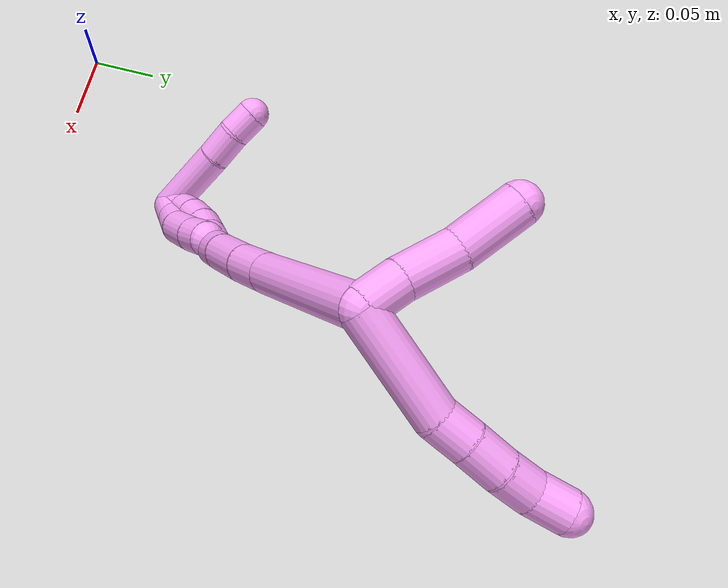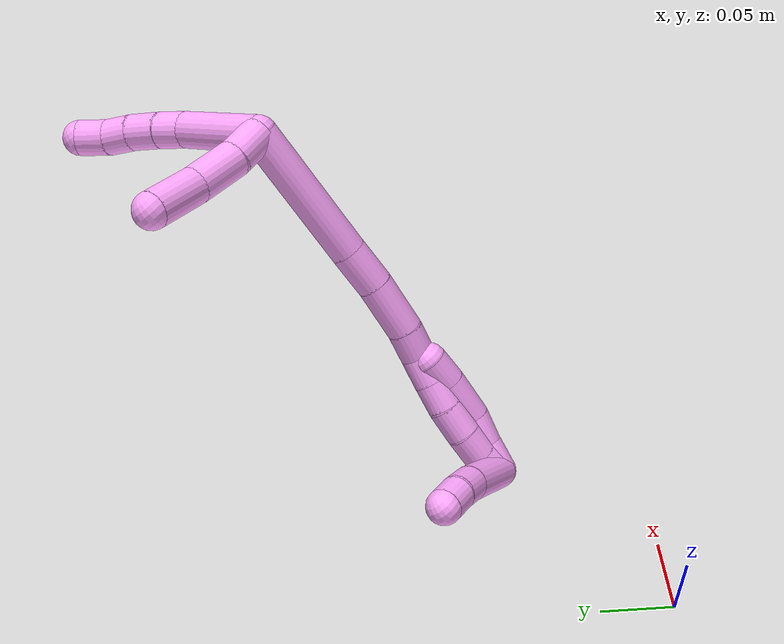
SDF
<sdf version="1.7">
 <world name="default">
  <model name="4">
   <static>0</static>
   <link name="4">
    <collision name="collision-cylinder-e_1_2_8">
     <pose>0.02944 -0.005629 0.014408 0.372468 1.08701 0.226708</pose>
     <geometry><cylinder><radius>0.0125</radius><length>0.066513</length></cylinder></geometry>
     <surface>
      <friction><ode><mu>1.16</mu><mu2>1.16</mu2><slip1>0</slip1><slip2>0</slip2></ode></friction>
      <contact><ode><kp>1e+06</kp><kd>1</kd><max_vel>0</max_vel><min_depth>0.001</min_depth></ode></contact>
     </surface>
    </collision>
    <visual name="visual-cylinder-e_1_2_8">
     <pose>0.02944 -0.005629 0.014408 0.372468 1.08701 0.226708</pose>
     <geometry><cylinder><radius>0.0125</radius><length>0.066513</length></cylinder></geometry>
     <material><ambient>1 0.65098 0.996078 1</ambient></material>
    </visual>
    <collision name="collision-cylinder-e_2_8_9">
     <pose>0.067449 -0.010197 0.033983 -0.202699 1.019 -0.113516</pose>
     <geometry><cylinder><radius>0.0125</radius><length>0.020125</length></cylinder></geometry>
     <surface>
      <friction><ode><mu>1.16</mu><mu2>1.16</mu2><slip1>0</slip1><slip2>0</slip2></ode></friction>
      <contact><ode><kp>1e+06</kp><kd>1</kd><max_vel>0</max_vel><min_depth>0.001</min_depth></ode></contact>
     </surface>
    </collision>
    <visual name="visual-cylinder-e_2_8_9">
     <pose>0.067449 -0.010197 0.033983 -0.202699 1.019 -0.113516</pose>
     <geometry><cylinder><radius>0.0125</radius><length>0.020125</length></cylinder></geometry>
     <material><ambient>1 0.65098 0.996078 1</ambient></material>
    </visual>
    <collision name="collision-cylinder-e_3_9_10">
     <pose>0.085861 -0.008152 0.044268 -0.189785 1.08389 -0.114484</pose>
     <geometry><cylinder><radius>0.0125</radius><length>0.022275</length></cylinder></geometry>
     <surface>
      <friction><ode><mu>1.16</mu><mu2>1.16</mu2><slip1>0</slip1><slip2>0</slip2></ode></friction>
      <contact><ode><kp>1e+06</kp><kd>1</kd><max_vel>0</max_vel><min_depth>0.001</min_depth></ode></contact>
     </surface>
    </collision>
    <visual name="visual-cylinder-e_3_9_10">
     <pose>0.085861 -0.008152 0.044268 -0.189785 1.08389 -0.114484</pose>
     <geometry><cylinder><radius>0.0125</radius><length>0.022275</length></cylinder></geometry>
     <material><ambient>1 0.65098 0.996078 1</ambient></material>
    </visual>
    <collision name="collision-cylinder-e_4_10_11">
     <pose>0.104839 -0.00552 0.053252 -0.403017 1.13949 -0.26025</pose>
     <geometry><cylinder><radius>0.0125</radius><length>0.02011</length></cylinder></geometry>
     <surface>
      <friction><ode><mu>1.16</mu><mu2>1.16</mu2><slip1>0</slip1><slip2>0</slip2></ode></friction>
      <contact><ode><kp>1e+06</kp><kd>1</kd><max_vel>0</max_vel><min_depth>0.001</min_depth></ode></contact>
     </surface>
    </collision>
    <visual name="visual-cylinder-e_4_10_11">
     <pose>0.104839 -0.00552 0.053252 -0.403017 1.13949 -0.26025</pose>
     <geometry><cylinder><radius>0.0125</radius><length>0.02011</length></cylinder></geometry>
     <material><ambient>1 0.65098 0.996078 1</ambient></material>
    </visual>
    <collision name="collision-cylinder-e_5_11_6">
     <pose>0.122047 -0.001099 0.063212 -0.427068 0.878584 -0.203092</pose>
     <geometry><cylinder><radius>0.0125</radius><length>0.020977</length></cylinder></geometry>
     <surface>
      <friction><ode><mu>1.16</mu><mu2>1.16</mu2><slip1>0</slip1><slip2>0</slip2></ode></friction>
      <contact><ode><kp>1e+06</kp><kd>1</kd><max_vel>0</max_vel><min_depth>0.001</min_depth></ode></contact>
     </surface>
    </collision>
    <visual name="visual-cylinder-e_5_11_6">
     <pose>0.122047 -0.001099 0.063212 -0.427068 0.878584 -0.203092</pose>
     <geometry><cylinder><radius>0.0125</radius><length>0.020977</length></cylinder></geometry>
     <material><ambient>1 0.65098 0.996078 1</ambient></material>
    </visual>
    <collision name="collision-cylinder-e_1_2_12">
     <pose>0.003334 0.012409 -0.000139 -1.58202 0.262436 -0.265363</pose>
     <geometry><cylinder><radius>0.0125</radius><length>0.025699</length></cylinder></geometry>
     <surface>
      <friction><ode><mu>1.16</mu><mu2>1.16</mu2><slip1>0</slip1><slip2>0</slip2></ode></friction>
      <contact><ode><kp>1e+06</kp><kd>1</kd><max_vel>0</max_vel><min_depth>0.001</min_depth></ode></contact>
     </surface>
    </collision>
    <visual name="visual-cylinder-e_1_2_12">
     <pose>0.003334 0.012409 -0.000139 -1.58202 0.262436 -0.265363</pose>
     <geometry><cylinder><radius>0.0125</radius><length>0.025699</length></cylinder></geometry>
     <material><ambient>1 0.65098 0.996078 1</ambient></material>
    </visual>
    <collision name="collision-cylinder-e_2_12_13">
     <pose>0.011629 0.041277 0.002209 -1.42079 0.289705 -0.249661</pose>
     <geometry><cylinder><radius>0.0125</radius><length>0.034741</length></cylinder></geometry>
     <surface>
      <friction><ode><mu>1.16</mu><mu2>1.16</mu2><slip1>0</slip1><slip2>0</slip2></ode></friction>
      <contact><ode><kp>1e+06</kp><kd>1</kd><max_vel>0</max_vel><min_depth>0.001</min_depth></ode></contact>
     </surface>
    </collision>
    <visual name="visual-cylinder-e_2_12_13">
     <pose>0.011629 0.041277 0.002209 -1.42079 0.289705 -0.249661</pose>
     <geometry><cylinder><radius>0.0125</radius><length>0.034741</length></cylinder></geometry>
     <material><ambient>1 0.65098 0.996078 1</ambient></material>
    </visual>
    <collision name="collision-cylinder-e_3_13_5">
     <pose>0.017832 0.077044 0.008815 -1.36068 0.062733 -0.050771</pose>
     <geometry><cylinder><radius>0.0125</radius><length>0.039561</length></cylinder></geometry>
     <surface>
      <friction><ode><mu>1.16</mu><mu2>1.16</mu2><slip1>0</slip1><slip2>0</slip2></ode></friction>
      <contact><ode><kp>1e+06</kp><kd>1</kd><max_vel>0</max_vel><min_depth>0.001</min_depth></ode></contact>
     </surface>
    </collision>
    <visual name="visual-cylinder-e_3_13_5">
     <pose>0.017832 0.077044 0.008815 -1.36068 0.062733 -0.050771</pose>
     <geometry><cylinder><radius>0.0125</radius><length>0.039561</length></cylinder></geometry>
     <material><ambient>1 0.65098 0.996078 1</ambient></material>
    </visual>
    <collision name="collision-cylinder-e_1_2_14">
     <pose>0.006389 -0.003341 -0.049849 3.07467 0.127194 2.17366</pose>
     <geometry><cylinder><radius>0.0125</radius><length>0.100736</length></cylinder></geometry>
     <surface>
      <friction><ode><mu>1.16</mu><mu2>1.16</mu2><slip1>0</slip1><slip2>0</slip2></ode></friction>
      <contact><ode><kp>1e+06</kp><kd>1</kd><max_vel>0</max_vel><min_depth>0.001</min_depth></ode></contact>
     </surface>
    </collision>
    <visual name="visual-cylinder-e_1_2_14">
     <pose>0.006389 -0.003341 -0.049849 3.07467 0.127194 2.17366</pose>
     <geometry><cylinder><radius>0.0125</radius><length>0.100736</length></cylinder></geometry>
     <material><ambient>1 0.65098 0.996078 1</ambient></material>
    </visual>
    <collision name="collision-cylinder-e_2_14_15">
     <pose>0.014273 -0.007601 -0.115098 3.08202 0.096596 2.03683</pose>
     <geometry><cylinder><radius>0.0125</radius><length>0.030998</length></cylinder></geometry>
     <surface>
      <friction><ode><mu>1.16</mu><mu2>1.16</mu2><slip1>0</slip1><slip2>0</slip2></ode></friction>
      <contact><ode><kp>1e+06</kp><kd>1</kd><max_vel>0</max_vel><min_depth>0.001</min_depth></ode></contact>
     </surface>
    </collision>
    <visual name="visual-cylinder-e_2_14_15">
     <pose>0.014273 -0.007601 -0.115098 3.08202 0.096596 2.03683</pose>
     <geometry><cylinder><radius>0.0125</radius><length>0.030998</length></cylinder></geometry>
     <material><ambient>1 0.65098 0.996078 1</ambient></material>
    </visual>
    <collision name="collision-cylinder-e_3_15_16">
     <pose>0.018614 -0.008529 -0.150056 3.1411 0.144466 3.13484</pose>
     <geometry><cylinder><radius>0.0125</radius><length>0.039529</length></cylinder></geometry>
     <surface>
      <friction><ode><mu>1.16</mu><mu2>1.16</mu2><slip1>0</slip1><slip2>0</slip2></ode></friction>
      <contact><ode><kp>1e+06</kp><kd>1</kd><max_vel>0</max_vel><min_depth>0.001</min_depth></ode></contact>
     </surface>
    </collision>
    <visual name="visual-cylinder-e_3_15_16">
     <pose>0.018614 -0.008529 -0.150056 3.1411 0.144466 3.13484</pose>
     <geometry><cylinder><radius>0.0125</radius><length>0.039529</length></cylinder></geometry>
     <material><ambient>1 0.65098 0.996078 1</ambient></material>
    </visual>
    <collision name="collision-cylinder-e_4_16_17">
     <pose>0.024143 -0.007976 -0.180418 -3.08959 0.243248 -2.72228</pose>
     <geometry><cylinder><radius>0.0125</radius><length>0.022292</length></cylinder></geometry>
     <surface>
      <friction><ode><mu>1.16</mu><mu2>1.16</mu2><slip1>0</slip1><slip2>0</slip2></ode></friction>
      <contact><ode><kp>1e+06</kp><kd>1</kd><max_vel>0</max_vel><min_depth>0.001</min_depth></ode></contact>
     </surface>
    </collision>
    <visual name="visual-cylinder-e_4_16_17">
     <pose>0.024143 -0.007976 -0.180418 -3.08959 0.243248 -2.72228</pose>
     <geometry><cylinder><radius>0.0125</radius><length>0.022292</length></cylinder></geometry>
     <material><ambient>1 0.65098 0.996078 1</ambient></material>
    </visual>
    <collision name="collision-cylinder-e_5_17_18">
     <pose>0.027657 -0.004728 -0.201704 -2.89077 0.076461 -0.589121</pose>
     <geometry><cylinder><radius>0.0125</radius><length>0.021706</length></cylinder></geometry>
     <surface>
      <friction><ode><mu>1.16</mu><mu2>1.16</mu2><slip1>0</slip1><slip2>0</slip2></ode></friction>
      <contact><ode><kp>1e+06</kp><kd>1</kd><max_vel>0</max_vel><min_depth>0.001</min_depth></ode></contact>
     </surface>
    </collision>
    <visual name="visual-cylinder-e_5_17_18">
     <pose>0.027657 -0.004728 -0.201704 -2.89077 0.076461 -0.589121</pose>
     <geometry><cylinder><radius>0.0125</radius><length>0.021706</length></cylinder></geometry>
     <material><ambient>1 0.65098 0.996078 1</ambient></material>
    </visual>
    <collision name="collision-cylinder-e_6_18_19">
     <pose>0.028981 0.000478 -0.222136 -2.89359 0.048222 -0.382243</pose>
     <geometry><cylinder><radius>0.0125</radius><length>0.020552</length></cylinder></geometry>
     <surface>
      <friction><ode><mu>1.16</mu><mu2>1.16</mu2><slip1>0</slip1><slip2>0</slip2></ode></friction>
      <contact><ode><kp>1e+06</kp><kd>1</kd><max_vel>0</max_vel><min_depth>0.001</min_depth></ode></contact>
     </surface>
    </collision>
    <visual name="visual-cylinder-e_6_18_19">
     <pose>0.028981 0.000478 -0.222136 -2.89359 0.048222 -0.382243</pose>
     <geometry><cylinder><radius>0.0125</radius><length>0.020552</length></cylinder></geometry>
     <material><ambient>1 0.65098 0.996078 1</ambient></material>
    </visual>
    <collision name="collision-cylinder-e_7_19_20">
     <pose>0.029834 0.004314 -0.243788 -3.02954 0.030354 -0.528579</pose>
     <geometry><cylinder><radius>0.0125</radius><length>0.023562</length></cylinder></geometry>
     <surface>
      <friction><ode><mu>1.16</mu><mu2>1.16</mu2><slip1>0</slip1><slip2>0</slip2></ode></friction>
      <contact><ode><kp>1e+06</kp><kd>1</kd><max_vel>0</max_vel><min_depth>0.001</min_depth></ode></contact>
     </surface>
    </collision>
    <visual name="visual-cylinder-e_7_19_20">
     <pose>0.029834 0.004314 -0.243788 -3.02954 0.030354 -0.528579</pose>
     <geometry><cylinder><radius>0.0125</radius><length>0.023562</length></cylinder></geometry>
     <material><ambient>1 0.65098 0.996078 1</ambient></material>
    </visual>
    <collision name="collision-cylinder-e_8_20_21">
     <pose>0.030786 0.005764 -0.2657 -3.12847 0.058076 -2.69734</pose>
     <geometry><cylinder><radius>0.0125</radius><length>0.020457</length></cylinder></geometry>
     <surface>
      <friction><ode><mu>1.16</mu><mu2>1.16</mu2><slip1>0</slip1><slip2>0</slip2></ode></friction>
      <contact><ode><kp>1e+06</kp><kd>1</kd><max_vel>0</max_vel><min_depth>0.001</min_depth></ode></contact>
     </surface>
    </collision>
    <visual name="visual-cylinder-e_8_20_21">
     <pose>0.030786 0.005764 -0.2657 -3.12847 0.058076 -2.69734</pose>
     <geometry><cylinder><radius>0.0125</radius><length>0.020457</length></cylinder></geometry>
     <material><ambient>1 0.65098 0.996078 1</ambient></material>
    </visual>
    <collision name="collision-cylinder-e_9_21_1">
     <pose>0.030812 0.004342 -0.285858 2.9864 -0.056315 -0.695077</pose>
     <geometry><cylinder><radius>0.0125</radius><length>0.020168</length></cylinder></geometry>
     <surface>
      <friction><ode><mu>1.16</mu><mu2>1.16</mu2><slip1>0</slip1><slip2>0</slip2></ode></friction>
      <contact><ode><kp>1e+06</kp><kd>1</kd><max_vel>0</max_vel><min_depth>0.001</min_depth></ode></contact>
     </surface>
    </collision>
    <visual name="visual-cylinder-e_9_21_1">
     <pose>0.030812 0.004342 -0.285858 2.9864 -0.056315 -0.695077</pose>
     <geometry><cylinder><radius>0.0125</radius><length>0.020168</length></cylinder></geometry>
     <material><ambient>1 0.65098 0.996078 1</ambient></material>
    </visual>
    <collision name="collision-cylinder-e_1_1_22">
     <pose>0.03031 -0.0004 -0.285369 0.296359 0.006024 0.000899</pose>
     <geometry><cylinder><radius>0.0125</radius><length>0.021823</length></cylinder></geometry>
     <surface>
      <friction><ode><mu>1.16</mu><mu2>1.16</mu2><slip1>0</slip1><slip2>0</slip2></ode></friction>
      <contact><ode><kp>1e+06</kp><kd>1</kd><max_vel>0</max_vel><min_depth>0.001</min_depth></ode></contact>
     </surface>
    </collision>
    <visual name="visual-cylinder-e_1_1_22">
     <pose>0.03031 -0.0004 -0.285369 0.296359 0.006024 0.000899</pose>
     <geometry><cylinder><radius>0.0125</radius><length>0.021823</length></cylinder></geometry>
     <material><ambient>1 0.65098 0.996078 1</ambient></material>
    </visual>
    <collision name="collision-cylinder-e_2_22_23">
     <pose>0.028818 -0.006319 -0.263889 0.242536 -0.136053 -0.016606</pose>
     <geometry><cylinder><radius>0.0125</radius><length>0.022967</length></cylinder></geometry>
     <surface>
      <friction><ode><mu>1.16</mu><mu2>1.16</mu2><slip1>0</slip1><slip2>0</slip2></ode></friction>
      <contact><ode><kp>1e+06</kp><kd>1</kd><max_vel>0</max_vel><min_depth>0.001</min_depth></ode></contact>
     </surface>
    </collision>
    <visual name="visual-cylinder-e_2_22_23">
     <pose>0.028818 -0.006319 -0.263889 0.242536 -0.136053 -0.016606</pose>
     <geometry><cylinder><radius>0.0125</radius><length>0.022967</length></cylinder></geometry>
     <material><ambient>1 0.65098 0.996078 1</ambient></material>
    </visual>
    <collision name="collision-cylinder-e_3_23_24">
     <pose>0.025293 -0.008924 -0.236447 -0.007796 -0.11939 0.000466</pose>
     <geometry><cylinder><radius>0.0125</radius><length>0.033031</length></cylinder></geometry>
     <surface>
      <friction><ode><mu>1.16</mu><mu2>1.16</mu2><slip1>0</slip1><slip2>0</slip2></ode></friction>
      <contact><ode><kp>1e+06</kp><kd>1</kd><max_vel>0</max_vel><min_depth>0.001</min_depth></ode></contact>
     </surface>
    </collision>
    <visual name="visual-cylinder-e_3_23_24">
     <pose>0.025293 -0.008924 -0.236447 -0.007796 -0.11939 0.000466</pose>
     <geometry><cylinder><radius>0.0125</radius><length>0.033031</length></cylinder></geometry>
     <material><ambient>1 0.65098 0.996078 1</ambient></material>
    </visual>
    <collision name="collision-cylinder-e_4_24_4">
     <pose>0.022236 -0.007835 -0.209056 -0.087181 -0.098487 0.004299</pose>
     <geometry><cylinder><radius>0.0125</radius><length>0.022179</length></cylinder></geometry>
     <surface>
      <friction><ode><mu>1.16</mu><mu2>1.16</mu2><slip1>0</slip1><slip2>0</slip2></ode></friction>
      <contact><ode><kp>1e+06</kp><kd>1</kd><max_vel>0</max_vel><min_depth>0.001</min_depth></ode></contact>
     </surface>
    </collision>
    <visual name="visual-cylinder-e_4_24_4">
     <pose>0.022236 -0.007835 -0.209056 -0.087181 -0.098487 0.004299</pose>
     <geometry><cylinder><radius>0.0125</radius><length>0.022179</length></cylinder></geometry>
     <material><ambient>1 0.65098 0.996078 1</ambient></material>
    </visual>
    <collision name="collision-cylinder-e_1_1_25">
     <pose>0.022333 0.026106 -0.282782 -1.06151 -0.287942 0.169771</pose>
     <geometry><cylinder><radius>0.0125</radius><length>0.055713</length></cylinder></geometry>
     <surface>
      <friction><ode><mu>1.16</mu><mu2>1.16</mu2><slip1>0</slip1><slip2>0</slip2></ode></friction>
      <contact><ode><kp>1e+06</kp><kd>1</kd><max_vel>0</max_vel><min_depth>0.001</min_depth></ode></contact>
     </surface>
    </collision>
    <visual name="visual-cylinder-e_1_1_25">
     <pose>0.022333 0.026106 -0.282782 -1.06151 -0.287942 0.169771</pose>
     <geometry><cylinder><radius>0.0125</radius><length>0.055713</length></cylinder></geometry>
     <material><ambient>1 0.65098 0.996078 1</ambient></material>
    </visual>
    <collision name="collision-cylinder-e_2_25_26">
     <pose>0.011033 0.060098 -0.265239 -1.17003 -0.284549 0.189189</pose>
     <geometry><cylinder><radius>0.0125</radius><length>0.024151</length></cylinder></geometry>
     <surface>
      <friction><ode><mu>1.16</mu><mu2>1.16</mu2><slip1>0</slip1><slip2>0</slip2></ode></friction>
      <contact><ode><kp>1e+06</kp><kd>1</kd><max_vel>0</max_vel><min_depth>0.001</min_depth></ode></contact>
     </surface>
    </collision>
    <visual name="visual-cylinder-e_2_25_26">
     <pose>0.011033 0.060098 -0.265239 -1.17003 -0.284549 0.189189</pose>
     <geometry><cylinder><radius>0.0125</radius><length>0.024151</length></cylinder></geometry>
     <material><ambient>1 0.65098 0.996078 1</ambient></material>
    </visual>
    <collision name="collision-cylinder-e_3_26_3">
     <pose>0.006257 0.080379 -0.258054 -1.30052 -0.138122 0.105128</pose>
     <geometry><cylinder><radius>0.0125</radius><length>0.020136</length></cylinder></geometry>
     <surface>
      <friction><ode><mu>1.16</mu><mu2>1.16</mu2><slip1>0</slip1><slip2>0</slip2></ode></friction>
      <contact><ode><kp>1e+06</kp><kd>1</kd><max_vel>0</max_vel><min_depth>0.001</min_depth></ode></contact>
     </surface>
    </collision>
    <visual name="visual-cylinder-e_3_26_3">
     <pose>0.006257 0.080379 -0.258054 -1.30052 -0.138122 0.105128</pose>
     <geometry><cylinder><radius>0.0125</radius><length>0.020136</length></cylinder></geometry>
     <material><ambient>1 0.65098 0.996078 1</ambient></material>
    </visual>
    <collision name="collision-sphere-3">
     <pose>0.004871 0.089989 -0.255392 0 -0 0</pose>
     <geometry><sphere><radius>0.0125</radius></sphere></geometry>
     <surface>
      <friction><ode><mu>1.16</mu><mu2>1.16</mu2><slip1>0</slip1><slip2>0</slip2></ode></friction>
      <contact><ode><kp>1e+06</kp><kd>1</kd><max_vel>0</max_vel><min_depth>0.001</min_depth></ode></contact>
     </surface>
    </collision>
    <visual name="visual-sphere-3">
     <pose>0.004871 0.089989 -0.255392 0 -0 0</pose>
     <geometry><sphere><radius>0.0125</radius></sphere></geometry>
     <material><ambient>1 0.65098 0.996078 1</ambient></material>
    </visual>
    <collision name="collision-sphere-26">
     <pose>0.007643 0.070769 -0.260717 0 -0 0</pose>
     <geometry><sphere><radius>0.0125</radius></sphere></geometry>
     <surface>
      <friction><ode><mu>1.16</mu><mu2>1.16</mu2><slip1>0</slip1><slip2>0</slip2></ode></friction>
      <contact><ode><kp>1e+06</kp><kd>1</kd><max_vel>0</max_vel><min_depth>0.001</min_depth></ode></contact>
     </surface>
    </collision>
    <visual name="visual-sphere-26">
     <pose>0.007643 0.070769 -0.260717 0 -0 0</pose>
     <geometry><sphere><radius>0.0125</radius></sphere></geometry>
     <material><ambient>1 0.65098 0.996078 1</ambient></material>
    </visual>
    <collision name="collision-sphere-25">
     <pose>0.014423 0.049426 -0.26976 0 -0 0</pose>
     <geometry><sphere><radius>0.0125</radius></sphere></geometry>
     <surface>
      <friction><ode><mu>1.16</mu><mu2>1.16</mu2><slip1>0</slip1><slip2>0</slip2></ode></friction>
      <contact><ode><kp>1e+06</kp><kd>1</kd><max_vel>0</max_vel><min_depth>0.001</min_depth></ode></contact>
     </surface>
    </collision>
    <visual name="visual-sphere-25">
     <pose>0.014423 0.049426 -0.26976 0 -0 0</pose>
     <geometry><sphere><radius>0.0125</radius></sphere></geometry>
     <material><ambient>1 0.65098 0.996078 1</ambient></material>
    </visual>
    <collision name="collision-sphere-4">
     <pose>0.021145 -0.006874 -0.198062 0 -0 0</pose>
     <geometry><sphere><radius>0.0125</radius></sphere></geometry>
     <surface>
      <friction><ode><mu>1.16</mu><mu2>1.16</mu2><slip1>0</slip1><slip2>0</slip2></ode></friction>
      <contact><ode><kp>1e+06</kp><kd>1</kd><max_vel>0</max_vel><min_depth>0.001</min_depth></ode></contact>
     </surface>
    </collision>
    <visual name="visual-sphere-4">
     <pose>0.021145 -0.006874 -0.198062 0 -0 0</pose>
     <geometry><sphere><radius>0.0125</radius></sphere></geometry>
     <material><ambient>1 0.65098 0.996078 1</ambient></material>
    </visual>
    <collision name="collision-sphere-24">
     <pose>0.023326 -0.008796 -0.22005 0 -0 0</pose>
     <geometry><sphere><radius>0.0125</radius></sphere></geometry>
     <surface>
      <friction><ode><mu>1.16</mu><mu2>1.16</mu2><slip1>0</slip1><slip2>0</slip2></ode></friction>
      <contact><ode><kp>1e+06</kp><kd>1</kd><max_vel>0</max_vel><min_depth>0.001</min_depth></ode></contact>
     </surface>
    </collision>
    <visual name="visual-sphere-24">
     <pose>0.023326 -0.008796 -0.22005 0 -0 0</pose>
     <geometry><sphere><radius>0.0125</radius></sphere></geometry>
     <material><ambient>1 0.65098 0.996078 1</ambient></material>
    </visual>
    <collision name="collision-sphere-23">
     <pose>0.02726 -0.009052 -0.252845 0 -0 0</pose>
     <geometry><sphere><radius>0.0125</radius></sphere></geometry>
     <surface>
      <friction><ode><mu>1.16</mu><mu2>1.16</mu2><slip1>0</slip1><slip2>0</slip2></ode></friction>
      <contact><ode><kp>1e+06</kp><kd>1</kd><max_vel>0</max_vel><min_depth>0.001</min_depth></ode></contact>
     </surface>
    </collision>
    <visual name="visual-sphere-23">
     <pose>0.02726 -0.009052 -0.252845 0 -0 0</pose>
     <geometry><sphere><radius>0.0125</radius></sphere></geometry>
     <material><ambient>1 0.65098 0.996078 1</ambient></material>
    </visual>
    <collision name="collision-sphere-22">
     <pose>0.030376 -0.003587 -0.274934 0 -0 0</pose>
     <geometry><sphere><radius>0.0125</radius></sphere></geometry>
     <surface>
      <friction><ode><mu>1.16</mu><mu2>1.16</mu2><slip1>0</slip1><slip2>0</slip2></ode></friction>
      <contact><ode><kp>1e+06</kp><kd>1</kd><max_vel>0</max_vel><min_depth>0.001</min_depth></ode></contact>
     </surface>
    </collision>
    <visual name="visual-sphere-22">
     <pose>0.030376 -0.003587 -0.274934 0 -0 0</pose>
     <geometry><sphere><radius>0.0125</radius></sphere></geometry>
     <material><ambient>1 0.65098 0.996078 1</ambient></material>
    </visual>
    <collision name="collision-sphere-1">
     <pose>0.030244 0.002786 -0.295805 0 -0 0</pose>
     <geometry><sphere><radius>0.0125</radius></sphere></geometry>
     <surface>
      <friction><ode><mu>1.16</mu><mu2>1.16</mu2><slip1>0</slip1><slip2>0</slip2></ode></friction>
      <contact><ode><kp>1e+06</kp><kd>1</kd><max_vel>0</max_vel><min_depth>0.001</min_depth></ode></contact>
     </surface>
    </collision>
    <visual name="visual-sphere-1">
     <pose>0.030244 0.002786 -0.295805 0 -0 0</pose>
     <geometry><sphere><radius>0.0125</radius></sphere></geometry>
     <material><ambient>1 0.65098 0.996078 1</ambient></material>
    </visual>
    <collision name="collision-sphere-21">
     <pose>0.031379 0.005898 -0.275911 0 -0 0</pose>
     <geometry><sphere><radius>0.0125</radius></sphere></geometry>
     <surface>
      <friction><ode><mu>1.16</mu><mu2>1.16</mu2><slip1>0</slip1><slip2>0</slip2></ode></friction>
      <contact><ode><kp>1e+06</kp><kd>1</kd><max_vel>0</max_vel><min_depth>0.001</min_depth></ode></contact>
     </surface>
    </collision>
    <visual name="visual-sphere-21">
     <pose>0.031379 0.005898 -0.275911 0 -0 0</pose>
     <geometry><sphere><radius>0.0125</radius></sphere></geometry>
     <material><ambient>1 0.65098 0.996078 1</ambient></material>
    </visual>
    <collision name="collision-sphere-6">
     <pose>0.130122 0.001674 0.069305 0 -0 0</pose>
     <geometry><sphere><radius>0.0125</radius></sphere></geometry>
     <surface>
      <friction><ode><mu>1.16</mu><mu2>1.16</mu2><slip1>0</slip1><slip2>0</slip2></ode></friction>
      <contact><ode><kp>1e+06</kp><kd>1</kd><max_vel>0</max_vel><min_depth>0.001</min_depth></ode></contact>
     </surface>
    </collision>
    <visual name="visual-sphere-6">
     <pose>0.130122 0.001674 0.069305 0 -0 0</pose>
     <geometry><sphere><radius>0.0125</radius></sphere></geometry>
     <material><ambient>1 0.65098 0.996078 1</ambient></material>
    </visual>
    <collision name="collision-sphere-11">
     <pose>0.113973 -0.003871 0.057119 0 -0 0</pose>
     <geometry><sphere><radius>0.0125</radius></sphere></geometry>
     <surface>
      <friction><ode><mu>1.16</mu><mu2>1.16</mu2><slip1>0</slip1><slip2>0</slip2></ode></friction>
      <contact><ode><kp>1e+06</kp><kd>1</kd><max_vel>0</max_vel><min_depth>0.001</min_depth></ode></contact>
     </surface>
    </collision>
    <visual name="visual-sphere-11">
     <pose>0.113973 -0.003871 0.057119 0 -0 0</pose>
     <geometry><sphere><radius>0.0125</radius></sphere></geometry>
     <material><ambient>1 0.65098 0.996078 1</ambient></material>
    </visual>
    <collision name="collision-sphere-10">
     <pose>0.095704 -0.007169 0.049385 0 -0 0</pose>
     <geometry><sphere><radius>0.0125</radius></sphere></geometry>
     <surface>
      <friction><ode><mu>1.16</mu><mu2>1.16</mu2><slip1>0</slip1><slip2>0</slip2></ode></friction>
      <contact><ode><kp>1e+06</kp><kd>1</kd><max_vel>0</max_vel><min_depth>0.001</min_depth></ode></contact>
     </surface>
    </collision>
    <visual name="visual-sphere-10">
     <pose>0.095704 -0.007169 0.049385 0 -0 0</pose>
     <geometry><sphere><radius>0.0125</radius></sphere></geometry>
     <material><ambient>1 0.65098 0.996078 1</ambient></material>
    </visual>
    <collision name="collision-sphere-9">
     <pose>0.076018 -0.009135 0.03915 0 -0 0</pose>
     <geometry><sphere><radius>0.0125</radius></sphere></geometry>
     <surface>
      <friction><ode><mu>1.16</mu><mu2>1.16</mu2><slip1>0</slip1><slip2>0</slip2></ode></friction>
      <contact><ode><kp>1e+06</kp><kd>1</kd><max_vel>0</max_vel><min_depth>0.001</min_depth></ode></contact>
     </surface>
    </collision>
    <visual name="visual-sphere-9">
     <pose>0.076018 -0.009135 0.03915 0 -0 0</pose>
     <geometry><sphere><radius>0.0125</radius></sphere></geometry>
     <material><ambient>1 0.65098 0.996078 1</ambient></material>
    </visual>
    <collision name="collision-sphere-2">
     <geometry><sphere><radius>0.0125</radius></sphere></geometry>
     <surface>
      <friction><ode><mu>1.16</mu><mu2>1.16</mu2><slip1>0</slip1><slip2>0</slip2></ode></friction>
      <contact><ode><kp>1e+06</kp><kd>1</kd><max_vel>0</max_vel><min_depth>0.001</min_depth></ode></contact>
     </surface>
    </collision>
    <visual name="visual-sphere-2">
     <geometry><sphere><radius>0.0125</radius></sphere></geometry>
     <material><ambient>1 0.65098 0.996078 1</ambient></material>
    </visual>
    <collision name="collision-sphere-19">
     <pose>0.029477 0.002997 -0.232086 0 -0 0</pose>
     <geometry><sphere><radius>0.0125</radius></sphere></geometry>
     <surface>
      <friction><ode><mu>1.16</mu><mu2>1.16</mu2><slip1>0</slip1><slip2>0</slip2></ode></friction>
      <contact><ode><kp>1e+06</kp><kd>1</kd><max_vel>0</max_vel><min_depth>0.001</min_depth></ode></contact>
     </surface>
    </collision>
    <visual name="visual-sphere-19">
     <pose>0.029477 0.002997 -0.232086 0 -0 0</pose>
     <geometry><sphere><radius>0.0125</radius></sphere></geometry>
     <material><ambient>1 0.65098 0.996078 1</ambient></material>
    </visual>
    <collision name="collision-sphere-8">
     <pose>0.05888 -0.011259 0.028816 0 -0 0</pose>
     <geometry><sphere><radius>0.0125</radius></sphere></geometry>
     <surface>
      <friction><ode><mu>1.16</mu><mu2>1.16</mu2><slip1>0</slip1><slip2>0</slip2></ode></friction>
      <contact><ode><kp>1e+06</kp><kd>1</kd><max_vel>0</max_vel><min_depth>0.001</min_depth></ode></contact>
     </surface>
    </collision>
    <visual name="visual-sphere-8">
     <pose>0.05888 -0.011259 0.028816 0 -0 0</pose>
     <geometry><sphere><radius>0.0125</radius></sphere></geometry>
     <material><ambient>1 0.65098 0.996078 1</ambient></material>
    </visual>
    <collision name="collision-sphere-12">
     <pose>0.006667 0.024817 -0.000279 0 -0 0</pose>
     <geometry><sphere><radius>0.0125</radius></sphere></geometry>
     <surface>
      <friction><ode><mu>1.16</mu><mu2>1.16</mu2><slip1>0</slip1><slip2>0</slip2></ode></friction>
      <contact><ode><kp>1e+06</kp><kd>1</kd><max_vel>0</max_vel><min_depth>0.001</min_depth></ode></contact>
     </surface>
    </collision>
    <visual name="visual-sphere-12">
     <pose>0.006667 0.024817 -0.000279 0 -0 0</pose>
     <geometry><sphere><radius>0.0125</radius></sphere></geometry>
     <material><ambient>1 0.65098 0.996078 1</ambient></material>
    </visual>
    <collision name="collision-sphere-13">
     <pose>0.016591 0.057736 0.004697 0 -0 0</pose>
     <geometry><sphere><radius>0.0125</radius></sphere></geometry>
     <surface>
      <friction><ode><mu>1.16</mu><mu2>1.16</mu2><slip1>0</slip1><slip2>0</slip2></ode></friction>
      <contact><ode><kp>1e+06</kp><kd>1</kd><max_vel>0</max_vel><min_depth>0.001</min_depth></ode></contact>
     </surface>
    </collision>
    <visual name="visual-sphere-13">
     <pose>0.016591 0.057736 0.004697 0 -0 0</pose>
     <geometry><sphere><radius>0.0125</radius></sphere></geometry>
     <material><ambient>1 0.65098 0.996078 1</ambient></material>
    </visual>
    <collision name="collision-sphere-5">
     <pose>0.019072 0.096351 0.012932 0 -0 0</pose>
     <geometry><sphere><radius>0.0125</radius></sphere></geometry>
     <surface>
      <friction><ode><mu>1.16</mu><mu2>1.16</mu2><slip1>0</slip1><slip2>0</slip2></ode></friction>
      <contact><ode><kp>1e+06</kp><kd>1</kd><max_vel>0</max_vel><min_depth>0.001</min_depth></ode></contact>
     </surface>
    </collision>
    <visual name="visual-sphere-5">
     <pose>0.019072 0.096351 0.012932 0 -0 0</pose>
     <geometry><sphere><radius>0.0125</radius></sphere></geometry>
     <material><ambient>1 0.65098 0.996078 1</ambient></material>
    </visual>
    <collision name="collision-sphere-14">
     <pose>0.012778 -0.006682 -0.099698 0 -0 0</pose>
     <geometry><sphere><radius>0.0125</radius></sphere></geometry>
     <surface>
      <friction><ode><mu>1.16</mu><mu2>1.16</mu2><slip1>0</slip1><slip2>0</slip2></ode></friction>
      <contact><ode><kp>1e+06</kp><kd>1</kd><max_vel>0</max_vel><min_depth>0.001</min_depth></ode></contact>
     </surface>
    </collision>
    <visual name="visual-sphere-14">
     <pose>0.012778 -0.006682 -0.099698 0 -0 0</pose>
     <geometry><sphere><radius>0.0125</radius></sphere></geometry>
     <material><ambient>1 0.65098 0.996078 1</ambient></material>
    </visual>
    <collision name="collision-sphere-15">
     <pose>0.015768 -0.008519 -0.130497 0 -0 0</pose>
     <geometry><sphere><radius>0.0125</radius></sphere></geometry>
     <surface>
      <friction><ode><mu>1.16</mu><mu2>1.16</mu2><slip1>0</slip1><slip2>0</slip2></ode></friction>
      <contact><ode><kp>1e+06</kp><kd>1</kd><max_vel>0</max_vel><min_depth>0.001</min_depth></ode></contact>
     </surface>
    </collision>
    <visual name="visual-sphere-15">
     <pose>0.015768 -0.008519 -0.130497 0 -0 0</pose>
     <geometry><sphere><radius>0.0125</radius></sphere></geometry>
     <material><ambient>1 0.65098 0.996078 1</ambient></material>
    </visual>
    <collision name="collision-sphere-16">
     <pose>0.021459 -0.008538 -0.169614 0 -0 0</pose>
     <geometry><sphere><radius>0.0125</radius></sphere></geometry>
     <surface>
      <friction><ode><mu>1.16</mu><mu2>1.16</mu2><slip1>0</slip1><slip2>0</slip2></ode></friction>
      <contact><ode><kp>1e+06</kp><kd>1</kd><max_vel>0</max_vel><min_depth>0.001</min_depth></ode></contact>
     </surface>
    </collision>
    <visual name="visual-sphere-16">
     <pose>0.021459 -0.008538 -0.169614 0 -0 0</pose>
     <geometry><sphere><radius>0.0125</radius></sphere></geometry>
     <material><ambient>1 0.65098 0.996078 1</ambient></material>
    </visual>
    <collision name="collision-sphere-17">
     <pose>0.026828 -0.007414 -0.191221 0 -0 0</pose>
     <geometry><sphere><radius>0.0125</radius></sphere></geometry>
     <surface>
      <friction><ode><mu>1.16</mu><mu2>1.16</mu2><slip1>0</slip1><slip2>0</slip2></ode></friction>
      <contact><ode><kp>1e+06</kp><kd>1</kd><max_vel>0</max_vel><min_depth>0.001</min_depth></ode></contact>
     </surface>
    </collision>
    <visual name="visual-sphere-17">
     <pose>0.026828 -0.007414 -0.191221 0 -0 0</pose>
     <geometry><sphere><radius>0.0125</radius></sphere></geometry>
     <material><ambient>1 0.65098 0.996078 1</ambient></material>
    </visual>
    <collision name="collision-sphere-18">
     <pose>0.028486 -0.002042 -0.212186 0 -0 0</pose>
     <geometry><sphere><radius>0.0125</radius></sphere></geometry>
     <surface>
      <friction><ode><mu>1.16</mu><mu2>1.16</mu2><slip1>0</slip1><slip2>0</slip2></ode></friction>
      <contact><ode><kp>1e+06</kp><kd>1</kd><max_vel>0</max_vel><min_depth>0.001</min_depth></ode></contact>
     </surface>
    </collision>
    <visual name="visual-sphere-18">
     <pose>0.028486 -0.002042 -0.212186 0 -0 0</pose>
     <geometry><sphere><radius>0.0125</radius></sphere></geometry>
     <material><ambient>1 0.65098 0.996078 1</ambient></material>
    </visual>
    <collision name="collision-sphere-20">
     <pose>0.030192 0.005631 -0.25549 0 -0 0</pose>
     <geometry><sphere><radius>0.0125</radius></sphere></geometry>
     <surface>
      <friction><ode><mu>1.16</mu><mu2>1.16</mu2><slip1>0</slip1><slip2>0</slip2></ode></friction>
      <contact><ode><kp>1e+06</kp><kd>1</kd><max_vel>0</max_vel><min_depth>0.001</min_depth></ode></contact>
     </surface>
    </collision>
    <visual name="visual-sphere-20">
     <pose>0.030192 0.005631 -0.25549 0 -0 0</pose>
     <geometry><sphere><radius>0.0125</radius></sphere></geometry>
     <material><ambient>1 0.65098 0.996078 1</ambient></material>
    </visual>
    <inertial>
     <pose>0.027854 0.009246 -0.121434 0 -0 0</pose>
     <mass>0.75</mass>
     <inertia><ixx>8.8e-05</ixx><ixy>0</ixy><ixz>0</ixz><iyy>0.0002</iyy><iyz>0</iyz><izz>-6.6e-05</izz></inertia>
    </inertial>
   </link>
   <pose>0.224632 0.261357 0.237774 0.120835 0.798774 1.15967</pose>
  </model>
 </world>
</sdf>
